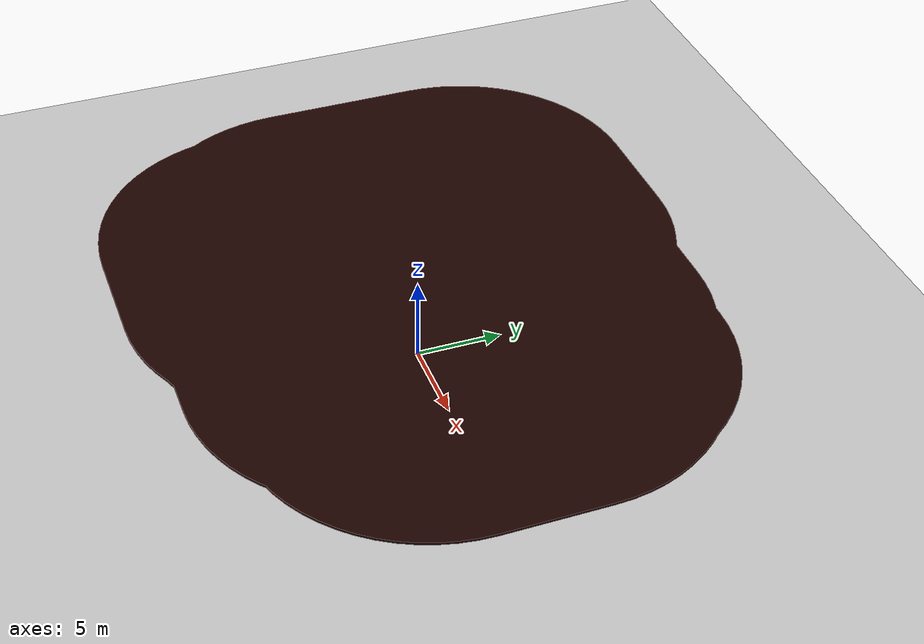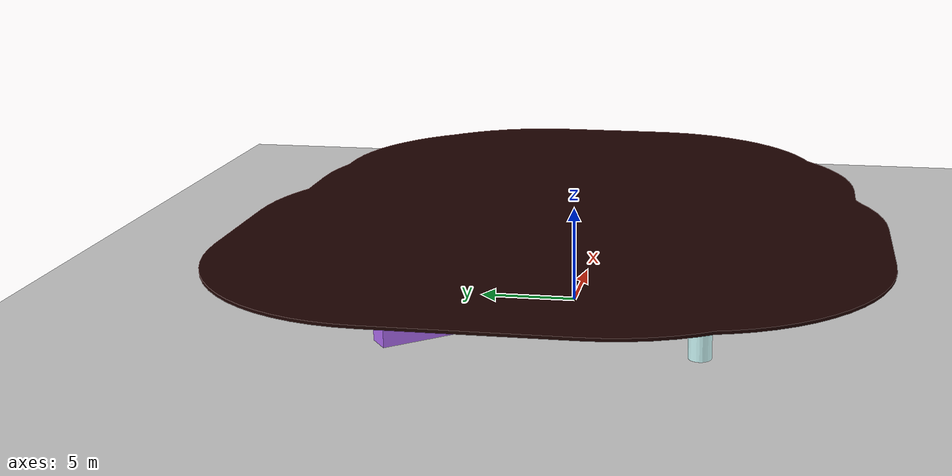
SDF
<sdf version="1.6">
 <world name="default">
  <atmosphere type="adiabatic"/>
  <wind><linear_velocity>0 0 0</linear_velocity></wind>
  <gravity>0 0 -9.8</gravity>
  <model name="dyn_box">
   <pose>-1.88865 6.22844 1.87117 0 0 -0.701593</pose>
   <static>0</static>
   <allow_auto_disable>0</allow_auto_disable>
   <link name="link">
    <collision name="collision">
     <geometry><box><size>3.0309 1.84703 3.74235</size></box></geometry>
     <max_contacts>20</max_contacts>
    </collision>
    <visual name="visual">
     <geometry><box><size>3.0309 1.84703 3.74235</size></box></geometry>
     <material>
      <ambient>0.827451 0.286275 0.305882 1</ambient>
      <diffuse>0.8274509803921568 0.28627450980392155 0.3058823529411765 1</diffuse>
     </material>
     <transparency>0.0</transparency>
    </visual>
    <inertial>
     <inertia>
      <ixx>0.8860803447044017</ixx>
      <iyy>1.1798779454642687</iyy>
      <izz>0.6409229364048233</izz>
      <ixy>0.0</ixy>
      <ixz>0.0</ixz>
      <iyz>0.0</iyz>
     </inertia>
     <mass>0.6105039186854347</mass>
    </inertial>
   </link>
  </model>
  <model name="static_cylinder">
   <pose>-7.50733 -7.1863 0.790025 0 0 -1.81109</pose>
   <static>1</static>
   <allow_auto_disable>0</allow_auto_disable>
   <link name="link">
    <collision name="collision">
     <geometry>
      <cylinder><radius>0.5704160356965362</radius><length>1.5800495364611933</length></cylinder>
     </geometry>
     <max_contacts>20</max_contacts>
    </collision>
    <visual name="visual">
     <geometry>
      <cylinder><radius>0.5704160356965362</radius><length>1.5800495364611933</length></cylinder>
     </geometry>
     <material>
      <ambient>0.815686 0.996078 0.996078 1</ambient>
      <diffuse>0.8156862745098039 0.996078431372549 0.996078431372549 1</diffuse>
     </material>
     <transparency>0.0</transparency>
    </visual>
   </link>
  </model>
  <model name="static_cylinder_1">
   <pose>-5.39232 10.8941 0.318638 0 -0 0.826357</pose>
   <static>1</static>
   <allow_auto_disable>0</allow_auto_disable>
   <link name="link">
    <collision name="collision">
     <geometry>
      <cylinder><radius>0.6612948976869204</radius><length>0.637275604704967</length></cylinder>
     </geometry>
     <max_contacts>20</max_contacts>
    </collision>
    <visual name="visual">
     <geometry>
      <cylinder><radius>0.6612948976869204</radius><length>0.637275604704967</length></cylinder>
     </geometry>
     <material>
      <ambient>0.00392157 1 0.027451 1</ambient>
      <diffuse>0.00392156862745098 1.0 0.027450980392156862 1</diffuse>
     </material>
     <transparency>0.0</transparency>
    </visual>
   </link>
  </model>
  <model name="dyn_box_1">
   <pose>-6.57912 6.64407 1.39517 0 -0 0.669722</pose>
   <static>0</static>
   <allow_auto_disable>0</allow_auto_disable>
   <link name="link">
    <collision name="collision">
     <geometry><box><size>1.24367 4.56686 2.79033</size></box></geometry>
     <max_contacts>20</max_contacts>
    </collision>
    <visual name="visual">
     <geometry><box><size>1.24367 4.56686 2.79033</size></box></geometry>
     <material>
      <ambient>0.701961 0.435294 0.964706 1</ambient>
      <diffuse>0.7019607843137254 0.43529411764705883 0.9647058823529412 1</diffuse>
     </material>
     <transparency>0.0</transparency>
    </visual>
    <inertial>
     <inertia>
      <ixx>0.5950161145599521</ixx>
      <iyy>0.1938781831089161</iyy>
      <izz>0.4654007847404342</izz>
      <ixy>0.0</ixy>
      <ixz>0.0</ixz>
      <iyz>0.0</iyz>
     </inertia>
     <mass>0.24928960945086098</mass>
    </inertial>
   </link>
  </model>
  <include>
   <uri>model://ceiling_10</uri>
   <pose>0 0 5 0 -0 0</pose>
   <name>ceiling_10</name>
   <static>1</static>
  </include>
  <include><uri>model://ground_plane</uri><name>ground_plane</name><static>1</static></include>
  <include><uri>model://sun</uri></include>
  <physics name="default_physics" default="0" type="ode">
   <gravity>0 0 -9.8066</gravity>
   <ode>
    <solver>
     <type>quick</type>
     <iters>10</iters>
     <sor>1.3</sor>
     <use_dynamic_moi_rescaling>0</use_dynamic_moi_rescaling>
    </solver>
    <constraints>
     <cfm>0</cfm>
     <erp>0.2</erp>
     <contact_max_correcting_vel>100</contact_max_correcting_vel>
     <contact_surface_layer>0.001</contact_surface_layer>
    </constraints>
   </ode>
   <max_step_size>0.004</max_step_size>
   <real_time_factor>1</real_time_factor>
   <real_time_update_rate>250</real_time_update_rate>
   <magnetic_field>6.0e-6 2.3e-5 -4.2e-5</magnetic_field>
  </physics>
  <scene>
   <ambient>0.8 0.8 0.8 1</ambient>
   <background>0.8 0.9 1 1</background>
   <shadows>false</shadows>
   <grid>false</grid>
   <origin_visual>false</origin_visual>
  </scene>
 </world>
</sdf>

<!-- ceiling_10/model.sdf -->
<sdf version="1.6">
  <model name="ceiling_10">
    <pose frame="">0 0 6 0 -0 0</pose>
    <static>1</static>
    <self_collide>0</self_collide>
    <allow_auto_disable>0</allow_auto_disable>
    <link name="mesh">
      <kinematic>0</kinematic>
      <gravity>1</gravity>
      <self_collide>0</self_collide>
      <collision name="collision">
        <geometry>
          <mesh>
            <uri>model://ceiling_10/meshes/MlVkdwADxX.stl</uri>
            <scale>1 1 1</scale>
          </mesh>
        </geometry>
        <pose frame="">-3.09795 -7.93164 -0.075 0 -0 0</pose>
        <max_contacts>20</max_contacts>
      </collision>
      <visual name="visual">
        <geometry>
          <mesh>
            <uri>model://ceiling_10/meshes/muIWsphSSW.stl</uri>
            <scale>1 1 1</scale>
          </mesh>
        </geometry>
        <material>
          <ambient>0.113725 0.00784314 0 1</ambient>
          <diffuse>0.11372549019607843 0.00784313725490196 0.0 1</diffuse>
        </material>
        <pose frame="">-3.09795 -7.93164 -0.075 0 -0 0</pose>
        <cast_shadows>1</cast_shadows>
        <transparency>0.0</transparency>
      </visual>
      <pose frame="">0 0 0 0 -0 0</pose>
    </link>
  </model>
</sdf>
